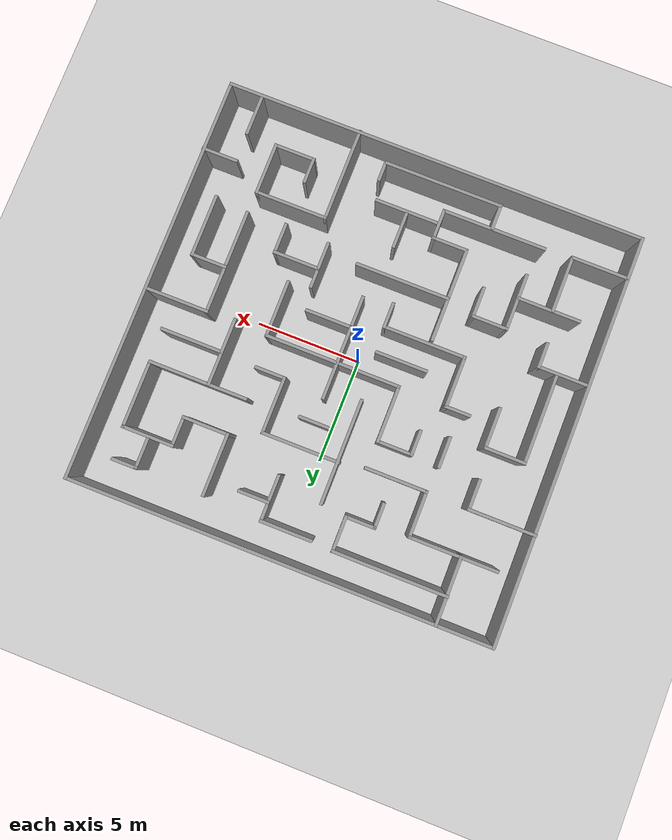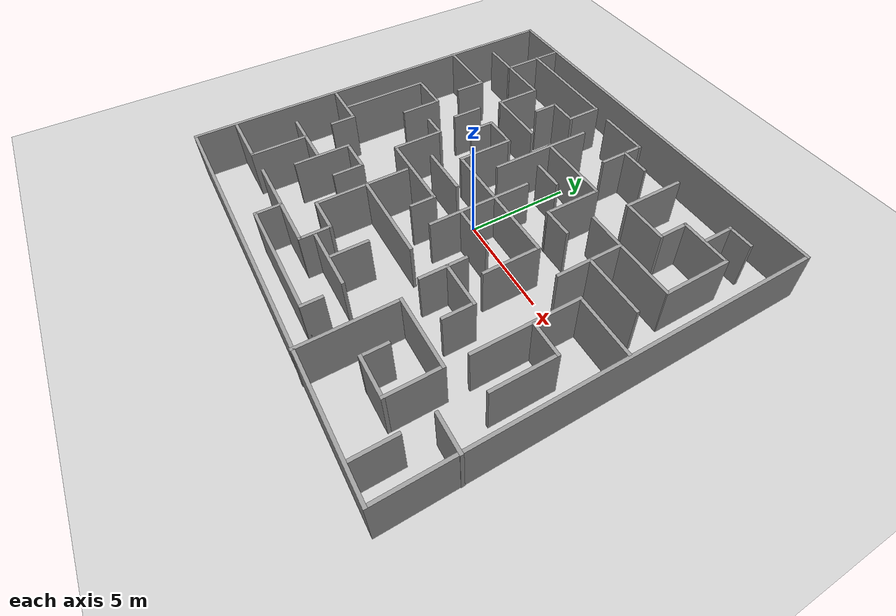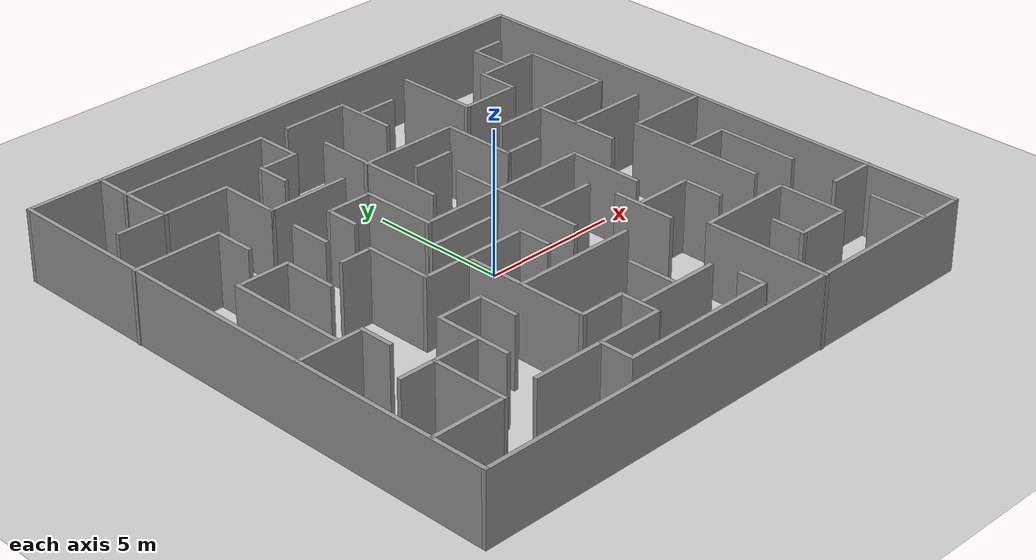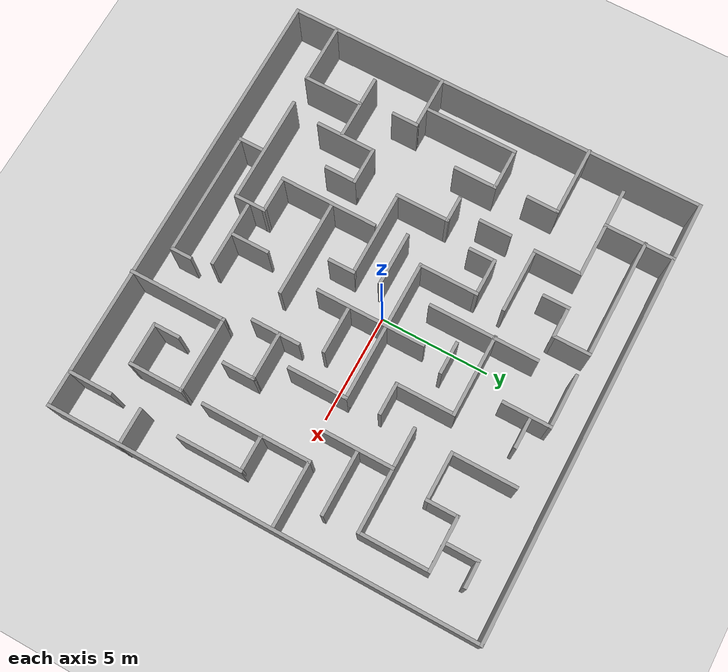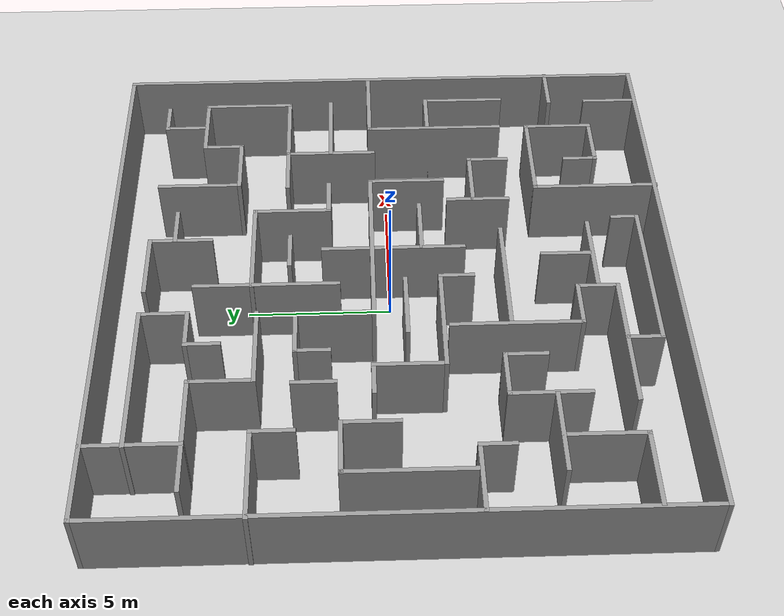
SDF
<?xml version="1.0"?>
<sdf version="1.7">
  <world name="maze_world">
    <model name="ground_plane">
      <static>true</static>
      <link name="link">
        <collision name="collision">
          <geometry>
            <plane>
              <normal>0 0 1</normal>
              <size>100 100</size>
            </plane>
          </geometry>
          <surface>
            <friction>
              <ode>
                <mu>100</mu>
                <mu2>50</mu2>
              </ode>
            </friction>
          </surface>
        </collision>
        <visual name="visual">
          <geometry>
            <plane>
              <normal>0 0 1</normal>
              <size>100 100</size>
            </plane>
          </geometry>
          <material>
            <script>
              <uri>file://media/materials/scripts/gazebo.material</uri>
              <name>Gazebo/Grey</name>
            </script>
          </material>
        </visual>
      </link>
    </model>

    <light name="sun" type="directional">
      <cast_shadows>true</cast_shadows>
      <pose>0 0 10 0 0 0</pose>
      <diffuse>0.8 0.8 0.8 1</diffuse>
      <specular>0.2 0.2 0.2 1</specular>
      <attenuation>
        <range>1000</range>
        <constant>0.9</constant>
        <linear>0.01</linear>
        <quadratic>0.001</quadratic>
      </attenuation>
      <direction>-0.5 0.1 -0.9</direction>
    </light>

    <include>
      <uri>model://maze</uri>
      <name>maze</name>
      <pose>0 0 0 0 0 0</pose>
    </include>

    <plugin name="gazebo_ros_state" filename="libgazebo_ros_state.so">
      <ros>
        <namespace>/gazebo</namespace>
      </ros>
      <update_rate>30.0</update_rate>
    </plugin>
  </world>
</sdf>

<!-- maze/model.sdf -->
<sdf version='1.7'>
  <model name='maze'>
    <pose>-0.256617 -0.139436 0 0 -0 0</pose>
    <link name='Wall_100'>
      <collision name='Wall_100_Collision'>
        <geometry>
          <box>
            <size>1.5 0.15 2.5</size>
          </box>
        </geometry>
        <pose>0 0 1.25 0 -0 0</pose>
      </collision>
      <visual name='Wall_100_Visual'>
        <pose>0 0 1.25 0 -0 0</pose>
        <geometry>
          <box>
            <size>1.5 0.15 2.5</size>
          </box>
        </geometry>
        <material>
          <script>
            <uri>file://media/materials/scripts/gazebo.material</uri>
            <name>Gazebo/Grey</name>
          </script>
          <ambient>1 1 1 1</ambient>
        </material>
        <meta>
          <layer>0</layer>
        </meta>
      </visual>
      <pose>3.38845 2.10955 0 0 -0 0</pose>
    </link>
    <link name='Wall_102'>
      <collision name='Wall_102_Collision'>
        <geometry>
          <box>
            <size>1.5 0.15 2.5</size>
          </box>
        </geometry>
        <pose>0 0 1.25 0 -0 0</pose>
      </collision>
      <visual name='Wall_102_Visual'>
        <pose>0 0 1.25 0 -0 0</pose>
        <geometry>
          <box>
            <size>1.5 0.15 2.5</size>
          </box>
        </geometry>
        <material>
          <script>
            <uri>file://media/materials/scripts/gazebo.material</uri>
            <name>Gazebo/Grey</name>
          </script>
          <ambient>1 1 1 1</ambient>
        </material>
        <meta>
          <layer>0</layer>
        </meta>
      </visual>
      <pose>0.759386 3.45543 0 0 -0 0</pose>
    </link>
    <link name='Wall_104'>
      <collision name='Wall_104_Collision'>
        <geometry>
          <box>
            <size>5.5 0.15 2.5</size>
          </box>
        </geometry>
        <pose>0 0 1.25 0 -0 0</pose>
      </collision>
      <visual name='Wall_104_Visual'>
        <pose>0 0 1.25 0 -0 0</pose>
        <geometry>
          <box>
            <size>5.5 0.15 2.5</size>
          </box>
        </geometry>
        <material>
          <script>
            <uri>file://media/materials/scripts/gazebo.material</uri>
            <name>Gazebo/Grey</name>
          </script>
          <ambient>1 1 1 1</ambient>
        </material>
        <meta>
          <layer>0</layer>
        </meta>
      </visual>
      <pose>-4.73773 8.38355 0 0 -0 0</pose>
    </link>
    <link name='Wall_105'>
      <collision name='Wall_105_Collision'>
        <geometry>
          <box>
            <size>1.75 0.15 2.5</size>
          </box>
        </geometry>
        <pose>0 0 1.25 0 -0 0</pose>
      </collision>
      <visual name='Wall_105_Visual'>
        <pose>0 0 1.25 0 -0 0</pose>
        <geometry>
          <box>
            <size>1.75 0.15 2.5</size>
          </box>
        </geometry>
        <material>
          <script>
            <uri>file://media/materials/scripts/gazebo.material</uri>
            <name>Gazebo/Grey</name>
          </script>
          <ambient>1 1 1 1</ambient>
        </material>
        <meta>
          <layer>0</layer>
        </meta>
      </visual>
      <pose>-2.06273 7.58355 0 0 -0 -1.5708</pose>
    </link>
    <link name='Wall_106'>
      <collision name='Wall_106_Collision'>
        <geometry>
          <box>
            <size>1.5 0.15 2.5</size>
          </box>
        </geometry>
        <pose>0 0 1.25 0 -0 0</pose>
      </collision>
      <visual name='Wall_106_Visual'>
        <pose>0 0 1.25 0 -0 0</pose>
        <geometry>
          <box>
            <size>1.5 0.15 2.5</size>
          </box>
        </geometry>
        <material>
          <script>
            <uri>file://media/materials/scripts/gazebo.material</uri>
            <name>Gazebo/Grey</name>
          </script>
          <ambient>1 1 1 1</ambient>
        </material>
        <meta>
          <layer>0</layer>
        </meta>
      </visual>
      <pose>-2.73773 6.78355 0 0 -0 3.14159</pose>
    </link>
    <link name='Wall_107'>
      <collision name='Wall_107_Collision'>
        <geometry>
          <box>
            <size>1.25 0.15 2.5</size>
          </box>
        </geometry>
        <pose>0 0 1.25 0 -0 0</pose>
      </collision>
      <visual name='Wall_107_Visual'>
        <pose>0 0 1.25 0 -0 0</pose>
        <geometry>
          <box>
            <size>1.25 0.15 2.5</size>
          </box>
        </geometry>
        <material>
          <script>
            <uri>file://media/materials/scripts/gazebo.material</uri>
            <name>Gazebo/Grey</name>
          </script>
          <ambient>1 1 1 1</ambient>
        </material>
        <meta>
          <layer>0</layer>
        </meta>
      </visual>
      <pose>-3.41273 6.23355 0 0 -0 -1.5708</pose>
    </link>
    <link name='Wall_11'>
      <collision name='Wall_11_Collision'>
        <geometry>
          <box>
            <size>2.75 0.15 2.5</size>
          </box>
        </geometry>
        <pose>0 0 1.25 0 -0 0</pose>
      </collision>
      <visual name='Wall_11_Visual'>
        <pose>0 0 1.25 0 -0 0</pose>
        <geometry>
          <box>
            <size>2.75 0.15 2.5</size>
          </box>
        </geometry>
        <material>
          <script>
            <uri>file://media/materials/scripts/gazebo.material</uri>
            <name>Gazebo/Grey</name>
          </script>
          <ambient>1 1 1 1</ambient>
        </material>
        <meta>
          <layer>0</layer>
        </meta>
      </visual>
      <pose>-8.6895 -7.69503 0 0 -0 0</pose>
    </link>
    <link name='Wall_110'>
      <collision name='Wall_110_Collision'>
        <geometry>
          <box>
            <size>4.75 0.15 2.5</size>
          </box>
        </geometry>
        <pose>0 0 1.25 0 -0 0</pose>
      </collision>
      <visual name='Wall_110_Visual'>
        <pose>0 0 1.25 0 -0 0</pose>
        <geometry>
          <box>
            <size>4.75 0.15 2.5</size>
          </box>
        </geometry>
        <material>
          <script>
            <uri>file://media/materials/scripts/gazebo.material</uri>
            <name>Gazebo/Grey</name>
          </script>
          <ambient>1 1 1 1</ambient>
        </material>
        <meta>
          <layer>0</layer>
        </meta>
      </visual>
      <pose>6.27353 3.59421 0 0 -0 9.9e-05</pose>
    </link>
    <link name='Wall_111'>
      <collision name='Wall_111_Collision'>
        <geometry>
          <box>
            <size>3.25 0.15 2.5</size>
          </box>
        </geometry>
        <pose>0 0 1.25 0 -0 0</pose>
      </collision>
      <visual name='Wall_111_Visual'>
        <pose>0 0 1.25 0 -0 0</pose>
        <geometry>
          <box>
            <size>3.25 0.15 2.5</size>
          </box>
        </geometry>
        <material>
          <script>
            <uri>file://media/materials/scripts/gazebo.material</uri>
            <name>Gazebo/Grey</name>
          </script>
          <ambient>1 1 1 1</ambient>
        </material>
        <meta>
          <layer>0</layer>
        </meta>
      </visual>
      <pose>8.57362 5.14444 0 0 -0 1.5708</pose>
    </link>
    <link name='Wall_112'>
      <collision name='Wall_112_Collision'>
        <geometry>
          <box>
            <size>2.5 0.15 2.5</size>
          </box>
        </geometry>
        <pose>0 0 1.25 0 -0 0</pose>
      </collision>
      <visual name='Wall_112_Visual'>
        <pose>0 0 1.25 0 -0 0</pose>
        <geometry>
          <box>
            <size>2.5 0.15 2.5</size>
          </box>
        </geometry>
        <material>
          <script>
            <uri>file://media/materials/scripts/gazebo.material</uri>
            <name>Gazebo/Grey</name>
          </script>
          <ambient>1 1 1 1</ambient>
        </material>
        <meta>
          <layer>0</layer>
        </meta>
      </visual>
      <pose>7.39853 6.69421 0 0 -0 -3.1414</pose>
    </link>
    <link name='Wall_113'>
      <collision name='Wall_113_Collision'>
        <geometry>
          <box>
            <size>1.5 0.15 2.5</size>
          </box>
        </geometry>
        <pose>0 0 1.25 0 -0 0</pose>
      </collision>
      <visual name='Wall_113_Visual'>
        <pose>0 0 1.25 0 -0 0</pose>
        <geometry>
          <box>
            <size>1.5 0.15 2.5</size>
          </box>
        </geometry>
        <material>
          <script>
            <uri>file://media/materials/scripts/gazebo.material</uri>
            <name>Gazebo/Grey</name>
          </script>
          <ambient>1 1 1 1</ambient>
        </material>
        <meta>
          <layer>0</layer>
        </meta>
      </visual>
      <pose>6.22344 6.01898 0 0 -0 -1.5708</pose>
    </link>
    <link name='Wall_114'>
      <collision name='Wall_114_Collision'>
        <geometry>
          <box>
            <size>2.25 0.15 2.5</size>
          </box>
        </geometry>
        <pose>0 0 1.25 0 -0 0</pose>
      </collision>
      <visual name='Wall_114_Visual'>
        <pose>0 0 1.25 0 -0 0</pose>
        <geometry>
          <box>
            <size>2.25 0.15 2.5</size>
          </box>
        </geometry>
        <material>
          <script>
            <uri>file://media/materials/scripts/gazebo.material</uri>
            <name>Gazebo/Grey</name>
          </script>
          <ambient>1 1 1 1</ambient>
        </material>
        <meta>
          <layer>0</layer>
        </meta>
      </visual>
      <pose>5.17345 5.34398 0 0 -0 3.14159</pose>
    </link>
    <link name='Wall_115'>
      <collision name='Wall_115_Collision'>
        <geometry>
          <box>
            <size>3 0.15 2.5</size>
          </box>
        </geometry>
        <pose>0 0 1.25 0 -0 0</pose>
      </collision>
      <visual name='Wall_115_Visual'>
        <pose>0 0 1.25 0 -0 0</pose>
        <geometry>
          <box>
            <size>3 0.15 2.5</size>
          </box>
        </geometry>
        <material>
          <script>
            <uri>file://media/materials/scripts/gazebo.material</uri>
            <name>Gazebo/Grey</name>
          </script>
          <ambient>1 1 1 1</ambient>
        </material>
        <meta>
          <layer>0</layer>
        </meta>
      </visual>
      <pose>4.12345 6.76898 0 0 -0 1.5708</pose>
    </link>
    <link name='Wall_117'>
      <collision name='Wall_117_Collision'>
        <geometry>
          <box>
            <size>2.75 0.15 2.5</size>
          </box>
        </geometry>
        <pose>0 0 1.25 0 -0 0</pose>
      </collision>
      <visual name='Wall_117_Visual'>
        <pose>0 0 1.25 0 -0 0</pose>
        <geometry>
          <box>
            <size>2.75 0.15 2.5</size>
          </box>
        </geometry>
        <material>
          <script>
            <uri>file://media/materials/scripts/gazebo.material</uri>
            <name>Gazebo/Grey</name>
          </script>
          <ambient>1 1 1 1</ambient>
        </material>
        <meta>
          <layer>0</layer>
        </meta>
      </visual>
      <pose>4.17212 -0.685147 0 0 -0 -1.5708</pose>
    </link>
    <link name='Wall_12'>
      <collision name='Wall_12_Collision'>
        <geometry>
          <box>
            <size>2.75 0.15 2.5</size>
          </box>
        </geometry>
        <pose>0 0 1.25 0 -0 0</pose>
      </collision>
      <visual name='Wall_12_Visual'>
        <pose>0 0 1.25 0 -0 0</pose>
        <geometry>
          <box>
            <size>2.75 0.15 2.5</size>
          </box>
        </geometry>
        <material>
          <script>
            <uri>file://media/materials/scripts/gazebo.material</uri>
            <name>Gazebo/Grey</name>
          </script>
          <ambient>1 1 1 1</ambient>
        </material>
        <meta>
          <layer>0</layer>
        </meta>
      </visual>
      <pose>-7.3895 -6.39503 0 0 -0 1.5708</pose>
    </link>
    <link name='Wall_120'>
      <collision name='Wall_120_Collision'>
        <geometry>
          <box>
            <size>3.25 0.15 2.5</size>
          </box>
        </geometry>
        <pose>0 0 1.25 0 -0 0</pose>
      </collision>
      <visual name='Wall_120_Visual'>
        <pose>0 0 1.25 0 -0 0</pose>
        <geometry>
          <box>
            <size>3.25 0.15 2.5</size>
          </box>
        </geometry>
        <material>
          <script>
            <uri>file://media/materials/scripts/gazebo.material</uri>
            <name>Gazebo/Grey</name>
          </script>
          <ambient>1 1 1 1</ambient>
        </material>
        <meta>
          <layer>0</layer>
        </meta>
      </visual>
      <pose>5.75719 2.03002 0 0 -0 -1.5708</pose>
    </link>
    <link name='Wall_122'>
      <collision name='Wall_122_Collision'>
        <geometry>
          <box>
            <size>3 0.15 2.5</size>
          </box>
        </geometry>
        <pose>0 0 1.25 0 -0 0</pose>
      </collision>
      <visual name='Wall_122_Visual'>
        <pose>0 0 1.25 0 -0 0</pose>
        <geometry>
          <box>
            <size>3 0.15 2.5</size>
          </box>
        </geometry>
        <material>
          <script>
            <uri>file://media/materials/scripts/gazebo.material</uri>
            <name>Gazebo/Grey</name>
          </script>
          <ambient>1 1 1 1</ambient>
        </material>
        <meta>
          <layer>0</layer>
        </meta>
      </visual>
      <pose>7.21252 2.03718 0 0 -0 0</pose>
    </link>
    <link name='Wall_124'>
      <collision name='Wall_124_Collision'>
        <geometry>
          <box>
            <size>2.25 0.15 2.5</size>
          </box>
        </geometry>
        <pose>0 0 1.25 0 -0 0</pose>
      </collision>
      <visual name='Wall_124_Visual'>
        <pose>0 0 1.25 0 -0 0</pose>
        <geometry>
          <box>
            <size>2.25 0.15 2.5</size>
          </box>
        </geometry>
        <material>
          <script>
            <uri>file://media/materials/scripts/gazebo.material</uri>
            <name>Gazebo/Grey</name>
          </script>
          <ambient>1 1 1 1</ambient>
        </material>
        <meta>
          <layer>0</layer>
        </meta>
      </visual>
      <pose>1.34239 7.26369 0 0 -0 1.5708</pose>
    </link>
    <link name='Wall_125'>
      <collision name='Wall_125_Collision'>
        <geometry>
          <box>
            <size>2.5 0.15 2.5</size>
          </box>
        </geometry>
        <pose>0 0 1.25 0 -0 0</pose>
      </collision>
      <visual name='Wall_125_Visual'>
        <pose>0 0 1.25 0 -0 0</pose>
        <geometry>
          <box>
            <size>2.5 0.15 2.5</size>
          </box>
        </geometry>
        <material>
          <script>
            <uri>file://media/materials/scripts/gazebo.material</uri>
            <name>Gazebo/Grey</name>
          </script>
          <ambient>1 1 1 1</ambient>
        </material>
        <meta>
          <layer>0</layer>
        </meta>
      </visual>
      <pose>0.167392 8.31369 0 0 -0 3.14159</pose>
    </link>
    <link name='Wall_127'>
      <collision name='Wall_127_Collision'>
        <geometry>
          <box>
            <size>1.5 0.15 2.5</size>
          </box>
        </geometry>
        <pose>0 0 1.25 0 -0 0</pose>
      </collision>
      <visual name='Wall_127_Visual'>
        <pose>0 0 1.25 0 -0 0</pose>
        <geometry>
          <box>
            <size>1.5 0.15 2.5</size>
          </box>
        </geometry>
        <material>
          <script>
            <uri>file://media/materials/scripts/gazebo.material</uri>
            <name>Gazebo/Grey</name>
          </script>
          <ambient>1 1 1 1</ambient>
        </material>
        <meta>
          <layer>0</layer>
        </meta>
      </visual>
      <pose>7.34124 7.49853 0 0 -0 1.5708</pose>
    </link>
    <link name='Wall_128'>
      <collision name='Wall_128_Collision'>
        <geometry>
          <box>
            <size>1.25 0.15 2.5</size>
          </box>
        </geometry>
        <pose>0 0 1.25 0 -0 0</pose>
      </collision>
      <visual name='Wall_128_Visual'>
        <pose>0 0 1.25 0 -0 0</pose>
        <geometry>
          <box>
            <size>1.25 0.15 2.5</size>
          </box>
        </geometry>
        <material>
          <script>
            <uri>file://media/materials/scripts/gazebo.material</uri>
            <name>Gazebo/Grey</name>
          </script>
          <ambient>1 1 1 1</ambient>
        </material>
        <meta>
          <layer>0</layer>
        </meta>
      </visual>
      <pose>7.89124 8.17353 0 0 -0 0</pose>
    </link>
    <link name='Wall_130'>
      <collision name='Wall_130_Collision'>
        <geometry>
          <box>
            <size>1.5 0.15 2.5</size>
          </box>
        </geometry>
        <pose>0 0 1.25 0 -0 0</pose>
      </collision>
      <visual name='Wall_130_Visual'>
        <pose>0 0 1.25 0 -0 0</pose>
        <geometry>
          <box>
            <size>1.5 0.15 2.5</size>
          </box>
        </geometry>
        <material>
          <script>
            <uri>file://media/materials/scripts/gazebo.material</uri>
            <name>Gazebo/Grey</name>
          </script>
          <ambient>1 1 1 1</ambient>
        </material>
        <meta>
          <layer>0</layer>
        </meta>
      </visual>
      <pose>2.03707 7.44726 0 0 -0 0</pose>
    </link>
    <link name='Wall_132'>
      <collision name='Wall_132_Collision'>
        <geometry>
          <box>
            <size>1.25 0.15 2.5</size>
          </box>
        </geometry>
        <pose>0 0 1.25 0 -0 0</pose>
      </collision>
      <visual name='Wall_132_Visual'>
        <pose>0 0 1.25 0 -0 0</pose>
        <geometry>
          <box>
            <size>1.25 0.15 2.5</size>
          </box>
        </geometry>
        <material>
          <script>
            <uri>file://media/materials/scripts/gazebo.material</uri>
            <name>Gazebo/Grey</name>
          </script>
          <ambient>1 1 1 1</ambient>
        </material>
        <meta>
          <layer>0</layer>
        </meta>
      </visual>
      <pose>-3.53549 -8.20861 0 0 -0 -1.5708</pose>
    </link>
    <link name='Wall_133'>
      <collision name='Wall_133_Collision'>
        <geometry>
          <box>
            <size>5.75 0.15 2.5</size>
          </box>
        </geometry>
        <pose>0 0 1.25 0 -0 0</pose>
      </collision>
      <visual name='Wall_133_Visual'>
        <pose>0 0 1.25 0 -0 0</pose>
        <geometry>
          <box>
            <size>5.75 0.15 2.5</size>
          </box>
        </geometry>
        <material>
          <script>
            <uri>file://media/materials/scripts/gazebo.material</uri>
            <name>Gazebo/Grey</name>
          </script>
          <ambient>1 1 1 1</ambient>
        </material>
        <meta>
          <layer>0</layer>
        </meta>
      </visual>
      <pose>-0.735489 -8.75861 0 0 -0 0</pose>
    </link>
    <link name='Wall_134'>
      <collision name='Wall_134_Collision'>
        <geometry>
          <box>
            <size>1 0.15 2.5</size>
          </box>
        </geometry>
        <pose>0 0 1.25 0 -0 0</pose>
      </collision>
      <visual name='Wall_134_Visual'>
        <pose>0 0 1.25 0 -0 0</pose>
        <geometry>
          <box>
            <size>1 0.15 2.5</size>
          </box>
        </geometry>
        <material>
          <script>
            <uri>file://media/materials/scripts/gazebo.material</uri>
            <name>Gazebo/Grey</name>
          </script>
          <ambient>1 1 1 1</ambient>
        </material>
        <meta>
          <layer>0</layer>
        </meta>
      </visual>
      <pose>2.06451 -8.33361 0 0 -0 1.5708</pose>
    </link>
    <link name='Wall_14'>
      <collision name='Wall_14_Collision'>
        <geometry>
          <box>
            <size>3 0.15 2.5</size>
          </box>
        </geometry>
        <pose>0 0 1.25 0 -0 0</pose>
      </collision>
      <visual name='Wall_14_Visual'>
        <pose>0 0 1.25 0 -0 0</pose>
        <geometry>
          <box>
            <size>3 0.15 2.5</size>
          </box>
        </geometry>
        <material>
          <script>
            <uri>file://media/materials/scripts/gazebo.material</uri>
            <name>Gazebo/Grey</name>
          </script>
          <ambient>1 1 1 1</ambient>
        </material>
        <meta>
          <layer>0</layer>
        </meta>
      </visual>
      <pose>-7.22947 -5.06542 0 0 -0 0</pose>
    </link>
    <link name='Wall_16'>
      <collision name='Wall_16_Collision'>
        <geometry>
          <box>
            <size>5 0.15 2.5</size>
          </box>
        </geometry>
        <pose>0 0 1.25 0 -0 0</pose>
      </collision>
      <visual name='Wall_16_Visual'>
        <pose>0 0 1.25 0 -0 0</pose>
        <geometry>
          <box>
            <size>5 0.15 2.5</size>
          </box>
        </geometry>
        <material>
          <script>
            <uri>file://media/materials/scripts/gazebo.material</uri>
            <name>Gazebo/Grey</name>
          </script>
          <ambient>1 1 1 1</ambient>
        </material>
        <meta>
          <layer>0</layer>
        </meta>
      </visual>
      <pose>-3.64031 -7.61412 0 0 -0 0</pose>
    </link>
    <link name='Wall_17'>
      <collision name='Wall_17_Collision'>
        <geometry>
          <box>
            <size>1.5 0.15 2.5</size>
          </box>
        </geometry>
        <pose>0 0 1.25 0 -0 0</pose>
      </collision>
      <visual name='Wall_17_Visual'>
        <pose>0 0 1.25 0 -0 0</pose>
        <geometry>
          <box>
            <size>1.5 0.15 2.5</size>
          </box>
        </geometry>
        <material>
          <script>
            <uri>file://media/materials/scripts/gazebo.material</uri>
            <name>Gazebo/Grey</name>
          </script>
          <ambient>1 1 1 1</ambient>
        </material>
        <meta>
          <layer>0</layer>
        </meta>
      </visual>
      <pose>-1.21531 -6.93912 0 0 -0 1.5708</pose>
    </link>
    <link name='Wall_18'>
      <collision name='Wall_18_Collision'>
        <geometry>
          <box>
            <size>1.75 0.15 2.5</size>
          </box>
        </geometry>
        <pose>0 0 1.25 0 -0 0</pose>
      </collision>
      <visual name='Wall_18_Visual'>
        <pose>0 0 1.25 0 -0 0</pose>
        <geometry>
          <box>
            <size>1.75 0.15 2.5</size>
          </box>
        </geometry>
        <material>
          <script>
            <uri>file://media/materials/scripts/gazebo.material</uri>
            <name>Gazebo/Grey</name>
          </script>
          <ambient>1 1 1 1</ambient>
        </material>
        <meta>
          <layer>0</layer>
        </meta>
      </visual>
      <pose>-2.01531 -6.26412 0 0 -0 3.14159</pose>
    </link>
    <link name='Wall_19'>
      <collision name='Wall_19_Collision'>
        <geometry>
          <box>
            <size>4.5 0.15 2.5</size>
          </box>
        </geometry>
        <pose>0 0 1.25 0 -0 0</pose>
      </collision>
      <visual name='Wall_19_Visual'>
        <pose>0 0 1.25 0 -0 0</pose>
        <geometry>
          <box>
            <size>4.5 0.15 2.5</size>
          </box>
        </geometry>
        <material>
          <script>
            <uri>file://media/materials/scripts/gazebo.material</uri>
            <name>Gazebo/Grey</name>
          </script>
          <ambient>1 1 1 1</ambient>
        </material>
        <meta>
          <layer>0</layer>
        </meta>
      </visual>
      <pose>-2.81531 -4.08912 0 0 -0 1.5708</pose>
    </link>
    <link name='Wall_21'>
      <collision name='Wall_21_Collision'>
        <geometry>
          <box>
            <size>2.75 0.15 2.5</size>
          </box>
        </geometry>
        <pose>0 0 1.25 0 -0 0</pose>
      </collision>
      <visual name='Wall_21_Visual'>
        <pose>0 0 1.25 0 -0 0</pose>
        <geometry>
          <box>
            <size>2.75 0.15 2.5</size>
          </box>
        </geometry>
        <material>
          <script>
            <uri>file://media/materials/scripts/gazebo.material</uri>
            <name>Gazebo/Grey</name>
          </script>
          <ambient>1 1 1 1</ambient>
        </material>
        <meta>
          <layer>0</layer>
        </meta>
      </visual>
      <pose>-5.74166 -4.85772 0 0 -0 1.5708</pose>
    </link>
    <link name='Wall_22'>
      <collision name='Wall_22_Collision'>
        <geometry>
          <box>
            <size>1.75 0.15 2.5</size>
          </box>
        </geometry>
        <pose>0 0 1.25 0 -0 0</pose>
      </collision>
      <visual name='Wall_22_Visual'>
        <pose>0 0 1.25 0 -0 0</pose>
        <geometry>
          <box>
            <size>1.75 0.15 2.5</size>
          </box>
        </geometry>
        <material>
          <script>
            <uri>file://media/materials/scripts/gazebo.material</uri>
            <name>Gazebo/Grey</name>
          </script>
          <ambient>1 1 1 1</ambient>
        </material>
        <meta>
          <layer>0</layer>
        </meta>
      </visual>
      <pose>-4.94166 -3.55772 0 0 -0 0</pose>
    </link>
    <link name='Wall_23'>
      <collision name='Wall_23_Collision'>
        <geometry>
          <box>
            <size>1.5 0.15 2.5</size>
          </box>
        </geometry>
        <pose>0 0 1.25 0 -0 0</pose>
      </collision>
      <visual name='Wall_23_Visual'>
        <pose>0 0 1.25 0 -0 0</pose>
        <geometry>
          <box>
            <size>1.5 0.15 2.5</size>
          </box>
        </geometry>
        <material>
          <script>
            <uri>file://media/materials/scripts/gazebo.material</uri>
            <name>Gazebo/Grey</name>
          </script>
          <ambient>1 1 1 1</ambient>
        </material>
        <meta>
          <layer>0</layer>
        </meta>
      </visual>
      <pose>-4.14166 -4.23272 0 0 -0 -1.5708</pose>
    </link>
    <link name='Wall_25'>
      <collision name='Wall_25_Collision'>
        <geometry>
          <box>
            <size>4.5 0.15 2.5</size>
          </box>
        </geometry>
        <pose>0 0 1.25 0 -0 0</pose>
      </collision>
      <visual name='Wall_25_Visual'>
        <pose>0 0 1.25 0 -0 0</pose>
        <geometry>
          <box>
            <size>4.5 0.15 2.5</size>
          </box>
        </geometry>
        <material>
          <script>
            <uri>file://media/materials/scripts/gazebo.material</uri>
            <name>Gazebo/Grey</name>
          </script>
          <ambient>1 1 1 1</ambient>
        </material>
        <meta>
          <layer>0</layer>
        </meta>
      </visual>
      <pose>-0.613407 -3.89221 0 0 -0 0</pose>
    </link>
    <link name='Wall_27'>
      <collision name='Wall_27_Collision'>
        <geometry>
          <box>
            <size>3 0.15 2.5</size>
          </box>
        </geometry>
        <pose>0 0 1.25 0 -0 0</pose>
      </collision>
      <visual name='Wall_27_Visual'>
        <pose>0 0 1.25 0 -0 0</pose>
        <geometry>
          <box>
            <size>3 0.15 2.5</size>
          </box>
        </geometry>
        <material>
          <script>
            <uri>file://media/materials/scripts/gazebo.material</uri>
            <name>Gazebo/Grey</name>
          </script>
          <ambient>1 1 1 1</ambient>
        </material>
        <meta>
          <layer>0</layer>
        </meta>
      </visual>
      <pose>0.376183 -6.96683 0 0 -0 0</pose>
    </link>
    <link name='Wall_33'>
      <collision name='Wall_33_Collision'>
        <geometry>
          <box>
            <size>4 0.15 2.5</size>
          </box>
        </geometry>
        <pose>0 0 1.25 0 -0 0</pose>
      </collision>
      <visual name='Wall_33_Visual'>
        <pose>0 0 1.25 0 -0 0</pose>
        <geometry>
          <box>
            <size>4 0.15 2.5</size>
          </box>
        </geometry>
        <material>
          <script>
            <uri>file://media/materials/scripts/gazebo.material</uri>
            <name>Gazebo/Grey</name>
          </script>
          <ambient>1 1 1 1</ambient>
        </material>
        <meta>
          <layer>0</layer>
        </meta>
      </visual>
      <pose>-2.52209 -1.66715 0 0 -0 0</pose>
    </link>
    <link name='Wall_34'>
      <collision name='Wall_34_Collision'>
        <geometry>
          <box>
            <size>1.25 0.15 2.5</size>
          </box>
        </geometry>
        <pose>0 0 1.25 0 -0 0</pose>
      </collision>
      <visual name='Wall_34_Visual'>
        <pose>0 0 1.25 0 -0 0</pose>
        <geometry>
          <box>
            <size>1.25 0.15 2.5</size>
          </box>
        </geometry>
        <material>
          <script>
            <uri>file://media/materials/scripts/gazebo.material</uri>
            <name>Gazebo/Grey</name>
          </script>
          <ambient>1 1 1 1</ambient>
        </material>
        <meta>
          <layer>0</layer>
        </meta>
      </visual>
      <pose>-0.597086 -2.21715 0 0 -0 -1.5708</pose>
    </link>
    <link name='Wall_36'>
      <collision name='Wall_36_Collision'>
        <geometry>
          <box>
            <size>1.75 0.15 2.5</size>
          </box>
        </geometry>
        <pose>0 0 1.25 0 -0 0</pose>
      </collision>
      <visual name='Wall_36_Visual'>
        <pose>0 0 1.25 0 -0 0</pose>
        <geometry>
          <box>
            <size>1.75 0.15 2.5</size>
          </box>
        </geometry>
        <material>
          <script>
            <uri>file://media/materials/scripts/gazebo.material</uri>
            <name>Gazebo/Grey</name>
          </script>
          <ambient>1 1 1 1</ambient>
        </material>
        <meta>
          <layer>0</layer>
        </meta>
      </visual>
      <pose>0.326672 -6.04546 0 0 -0 1.5708</pose>
    </link>
    <link name='Wall_39'>
      <collision name='Wall_39_Collision'>
        <geometry>
          <box>
            <size>4.5 0.15 2.5</size>
          </box>
        </geometry>
        <pose>0 0 1.25 0 -0 0</pose>
      </collision>
      <visual name='Wall_39_Visual'>
        <pose>0 0 1.25 0 -0 0</pose>
        <geometry>
          <box>
            <size>4.5 0.15 2.5</size>
          </box>
        </geometry>
        <material>
          <script>
            <uri>file://media/materials/scripts/gazebo.material</uri>
            <name>Gazebo/Grey</name>
          </script>
          <ambient>1 1 1 1</ambient>
        </material>
        <meta>
          <layer>0</layer>
        </meta>
      </visual>
      <pose>3.69697 -7.51752 0 0 -0 1.5708</pose>
    </link>
    <link name='Wall_4'>
      <collision name='Wall_4_Collision'>
        <geometry>
          <box>
            <size>19.5 0.15 2.5</size>
          </box>
        </geometry>
        <pose>0 0 1.25 0 -0 0</pose>
      </collision>
      <visual name='Wall_4_Visual'>
        <pose>0 0 1.25 0 -0 0</pose>
        <geometry>
          <box>
            <size>19.5 0.15 2.5</size>
          </box>
        </geometry>
        <material>
          <script>
            <uri>file://media/materials/scripts/gazebo.material</uri>
            <name>Gazebo/Grey</name>
          </script>
          <ambient>1 1 1 1</ambient>
        </material>
        <meta>
          <layer>0</layer>
        </meta>
      </visual>
      <pose>-10.0454 0.017523 0 0 -0 -1.5708</pose>
    </link>
    <link name='Wall_40'>
      <collision name='Wall_40_Collision'>
        <geometry>
          <box>
            <size>3.5 0.15 2.5</size>
          </box>
        </geometry>
        <pose>0 0 1.25 0 -0 0</pose>
      </collision>
      <visual name='Wall_40_Visual'>
        <pose>0 0 1.25 0 -0 0</pose>
        <geometry>
          <box>
            <size>3.5 0.15 2.5</size>
          </box>
        </geometry>
        <material>
          <script>
            <uri>file://media/materials/scripts/gazebo.material</uri>
            <name>Gazebo/Grey</name>
          </script>
          <ambient>1 1 1 1</ambient>
        </material>
        <meta>
          <layer>0</layer>
        </meta>
      </visual>
      <pose>5.37197 -5.34252 0 0 -0 0</pose>
    </link>
    <link name='Wall_42'>
      <collision name='Wall_42_Collision'>
        <geometry>
          <box>
            <size>5 0.15 2.5</size>
          </box>
        </geometry>
        <pose>0 0 1.25 0 -0 0</pose>
      </collision>
      <visual name='Wall_42_Visual'>
        <pose>0 0 1.25 0 -0 0</pose>
        <geometry>
          <box>
            <size>5 0.15 2.5</size>
          </box>
        </geometry>
        <material>
          <script>
            <uri>file://media/materials/scripts/gazebo.material</uri>
            <name>Gazebo/Grey</name>
          </script>
          <ambient>1 1 1 1</ambient>
        </material>
        <meta>
          <layer>0</layer>
        </meta>
      </visual>
      <pose>0.777135 -0.126235 0 0 -0 1.5708</pose>
    </link>
    <link name='Wall_44'>
      <collision name='Wall_44_Collision'>
        <geometry>
          <box>
            <size>6.5 0.15 2.5</size>
          </box>
        </geometry>
        <pose>0 0 1.25 0 -0 0</pose>
      </collision>
      <visual name='Wall_44_Visual'>
        <pose>0 0 1.25 0 -0 0</pose>
        <geometry>
          <box>
            <size>6.5 0.15 2.5</size>
          </box>
        </geometry>
        <material>
          <script>
            <uri>file://media/materials/scripts/gazebo.material</uri>
            <name>Gazebo/Grey</name>
          </script>
          <ambient>1 1 1 1</ambient>
        </material>
        <meta>
          <layer>0</layer>
        </meta>
      </visual>
      <pose>0.997119 0.614853 0 0 -0 0</pose>
    </link>
    <link name='Wall_46'>
      <collision name='Wall_46_Collision'>
        <geometry>
          <box>
            <size>2.5 0.15 2.5</size>
          </box>
        </geometry>
        <pose>0 0 1.25 0 -0 0</pose>
      </collision>
      <visual name='Wall_46_Visual'>
        <pose>0 0 1.25 0 -0 0</pose>
        <geometry>
          <box>
            <size>2.5 0.15 2.5</size>
          </box>
        </geometry>
        <material>
          <script>
            <uri>file://media/materials/scripts/gazebo.material</uri>
            <name>Gazebo/Grey</name>
          </script>
          <ambient>1 1 1 1</ambient>
        </material>
        <meta>
          <layer>0</layer>
        </meta>
      </visual>
      <pose>-1.88235 -0.475688 0 0 -0 0</pose>
    </link>
    <link name='Wall_48'>
      <collision name='Wall_48_Collision'>
        <geometry>
          <box>
            <size>2.5 0.15 2.5</size>
          </box>
        </geometry>
        <pose>0 0 1.25 0 -0 0</pose>
      </collision>
      <visual name='Wall_48_Visual'>
        <pose>0 0 1.25 0 -0 0</pose>
        <geometry>
          <box>
            <size>2.5 0.15 2.5</size>
          </box>
        </geometry>
        <material>
          <script>
            <uri>file://media/materials/scripts/gazebo.material</uri>
            <name>Gazebo/Grey</name>
          </script>
          <ambient>1 1 1 1</ambient>
        </material>
        <meta>
          <layer>0</layer>
        </meta>
      </visual>
      <pose>-8.84774 -2.48088 0 0 -0 0</pose>
    </link>
    <link name='Wall_49'>
      <collision name='Wall_49_Collision'>
        <geometry>
          <box>
            <size>1.25 0.15 2.5</size>
          </box>
        </geometry>
        <pose>0 0 1.25 0 -0 0</pose>
      </collision>
      <visual name='Wall_49_Visual'>
        <pose>0 0 1.25 0 -0 0</pose>
        <geometry>
          <box>
            <size>1.25 0.15 2.5</size>
          </box>
        </geometry>
        <material>
          <script>
            <uri>file://media/materials/scripts/gazebo.material</uri>
            <name>Gazebo/Grey</name>
          </script>
          <ambient>1 1 1 1</ambient>
        </material>
        <meta>
          <layer>0</layer>
        </meta>
      </visual>
      <pose>-7.67274 -3.03088 0 0 -0 -1.5708</pose>
    </link>
    <link name='Wall_5'>
      <collision name='Wall_5_Collision'>
        <geometry>
          <box>
            <size>20.25 0.15 2.5</size>
          </box>
        </geometry>
        <pose>0 0 1.25 0 -0 0</pose>
      </collision>
      <visual name='Wall_5_Visual'>
        <pose>0 0 1.25 0 -0 0</pose>
        <geometry>
          <box>
            <size>20.25 0.15 2.5</size>
          </box>
        </geometry>
        <material>
          <script>
            <uri>file://media/materials/scripts/gazebo.material</uri>
            <name>Gazebo/Grey</name>
          </script>
          <ambient>1 1 1 1</ambient>
        </material>
        <meta>
          <layer>0</layer>
        </meta>
      </visual>
      <pose>0.004561 -9.65748 0 0 -0 0</pose>
    </link>
    <link name='Wall_51'>
      <collision name='Wall_51_Collision'>
        <geometry>
          <box>
            <size>4.25 0.15 2.5</size>
          </box>
        </geometry>
        <pose>0 0 1.25 0 -0 0</pose>
      </collision>
      <visual name='Wall_51_Visual'>
        <pose>0 0 1.25 0 -0 0</pose>
        <geometry>
          <box>
            <size>4.25 0.15 2.5</size>
          </box>
        </geometry>
        <material>
          <script>
            <uri>file://media/materials/scripts/gazebo.material</uri>
            <name>Gazebo/Grey</name>
          </script>
          <ambient>1 1 1 1</ambient>
        </material>
        <meta>
          <layer>0</layer>
        </meta>
      </visual>
      <pose>-8.55735 -0.292873 0 0 -0 1.5708</pose>
    </link>
    <link name='Wall_52'>
      <collision name='Wall_52_Collision'>
        <geometry>
          <box>
            <size>2 0.15 2.5</size>
          </box>
        </geometry>
        <pose>0 0 1.25 0 -0 0</pose>
      </collision>
      <visual name='Wall_52_Visual'>
        <pose>0 0 1.25 0 -0 0</pose>
        <geometry>
          <box>
            <size>2 0.15 2.5</size>
          </box>
        </geometry>
        <material>
          <script>
            <uri>file://media/materials/scripts/gazebo.material</uri>
            <name>Gazebo/Grey</name>
          </script>
          <ambient>1 1 1 1</ambient>
        </material>
        <meta>
          <layer>0</layer>
        </meta>
      </visual>
      <pose>-7.63235 1.75713 0 0 -0 0</pose>
    </link>
    <link name='Wall_53'>
      <collision name='Wall_53_Collision'>
        <geometry>
          <box>
            <size>2 0.15 2.5</size>
          </box>
        </geometry>
        <pose>0 0 1.25 0 -0 0</pose>
      </collision>
      <visual name='Wall_53_Visual'>
        <pose>0 0 1.25 0 -0 0</pose>
        <geometry>
          <box>
            <size>2 0.15 2.5</size>
          </box>
        </geometry>
        <material>
          <script>
            <uri>file://media/materials/scripts/gazebo.material</uri>
            <name>Gazebo/Grey</name>
          </script>
          <ambient>1 1 1 1</ambient>
        </material>
        <meta>
          <layer>0</layer>
        </meta>
      </visual>
      <pose>-6.70735 0.832127 0 0 -0 -1.5708</pose>
    </link>
    <link name='Wall_55'>
      <collision name='Wall_55_Collision'>
        <geometry>
          <box>
            <size>2.5 0.15 2.5</size>
          </box>
        </geometry>
        <pose>0 0 1.25 0 -0 0</pose>
      </collision>
      <visual name='Wall_55_Visual'>
        <pose>0 0 1.25 0 -0 0</pose>
        <geometry>
          <box>
            <size>2.5 0.15 2.5</size>
          </box>
        </geometry>
        <material>
          <script>
            <uri>file://media/materials/scripts/gazebo.material</uri>
            <name>Gazebo/Grey</name>
          </script>
          <ambient>1 1 1 1</ambient>
        </material>
        <meta>
          <layer>0</layer>
        </meta>
      </visual>
      <pose>-4.44709 -0.492148 0 0 -0 1.5708</pose>
    </link>
    <link name='Wall_56'>
      <collision name='Wall_56_Collision'>
        <geometry>
          <box>
            <size>1.25 0.15 2.5</size>
          </box>
        </geometry>
        <pose>0 0 1.25 0 -0 0</pose>
      </collision>
      <visual name='Wall_56_Visual'>
        <pose>0 0 1.25 0 -0 0</pose>
        <geometry>
          <box>
            <size>1.25 0.15 2.5</size>
          </box>
        </geometry>
        <material>
          <script>
            <uri>file://media/materials/scripts/gazebo.material</uri>
            <name>Gazebo/Grey</name>
          </script>
          <ambient>1 1 1 1</ambient>
        </material>
        <meta>
          <layer>0</layer>
        </meta>
      </visual>
      <pose>-4.99709 0.682852 0 0 -0 3.14159</pose>
    </link>
    <link name='Wall_58'>
      <collision name='Wall_58_Collision'>
        <geometry>
          <box>
            <size>2.5 0.15 2.5</size>
          </box>
        </geometry>
        <pose>0 0 1.25 0 -0 0</pose>
      </collision>
      <visual name='Wall_58_Visual'>
        <pose>0 0 1.25 0 -0 0</pose>
        <geometry>
          <box>
            <size>2.5 0.15 2.5</size>
          </box>
        </geometry>
        <material>
          <script>
            <uri>file://media/materials/scripts/gazebo.material</uri>
            <name>Gazebo/Grey</name>
          </script>
          <ambient>1 1 1 1</ambient>
        </material>
        <meta>
          <layer>0</layer>
        </meta>
      </visual>
      <pose>7.04697 -6.51752 0 0 -0 -1.5708</pose>
    </link>
    <link name='Wall_59'>
      <collision name='Wall_59_Collision'>
        <geometry>
          <box>
            <size>2 0.15 2.5</size>
          </box>
        </geometry>
        <pose>0 0 1.25 0 -0 0</pose>
      </collision>
      <visual name='Wall_59_Visual'>
        <pose>0 0 1.25 0 -0 0</pose>
        <geometry>
          <box>
            <size>2 0.15 2.5</size>
          </box>
        </geometry>
        <material>
          <script>
            <uri>file://media/materials/scripts/gazebo.material</uri>
            <name>Gazebo/Grey</name>
          </script>
          <ambient>1 1 1 1</ambient>
        </material>
        <meta>
          <layer>0</layer>
        </meta>
      </visual>
      <pose>6.12197 -7.69252 0 0 -0 3.14159</pose>
    </link>
    <link name='Wall_6'>
      <collision name='Wall_6_Collision'>
        <geometry>
          <box>
            <size>19.5 0.15 2.5</size>
          </box>
        </geometry>
        <pose>0 0 1.25 0 -0 0</pose>
      </collision>
      <visual name='Wall_6_Visual'>
        <pose>0 0 1.25 0 -0 0</pose>
        <geometry>
          <box>
            <size>19.5 0.15 2.5</size>
          </box>
        </geometry>
        <material>
          <script>
            <uri>file://media/materials/scripts/gazebo.material</uri>
            <name>Gazebo/Grey</name>
          </script>
          <ambient>1 1 1 1</ambient>
        </material>
        <meta>
          <layer>0</layer>
        </meta>
      </visual>
      <pose>10.0546 0.017523 0 0 -0 1.5708</pose>
    </link>
    <link name='Wall_60'>
      <collision name='Wall_60_Collision'>
        <geometry>
          <box>
            <size>1.25 0.15 2.5</size>
          </box>
        </geometry>
        <pose>0 0 1.25 0 -0 0</pose>
      </collision>
      <visual name='Wall_60_Visual'>
        <pose>0 0 1.25 0 -0 0</pose>
        <geometry>
          <box>
            <size>1.25 0.15 2.5</size>
          </box>
        </geometry>
        <material>
          <script>
            <uri>file://media/materials/scripts/gazebo.material</uri>
            <name>Gazebo/Grey</name>
          </script>
          <ambient>1 1 1 1</ambient>
        </material>
        <meta>
          <layer>0</layer>
        </meta>
      </visual>
      <pose>5.19697 -7.14252 0 0 -0 1.5708</pose>
    </link>
    <link name='Wall_62'>
      <collision name='Wall_62_Collision'>
        <geometry>
          <box>
            <size>2.25 0.15 2.5</size>
          </box>
        </geometry>
        <pose>0 0 1.25 0 -0 0</pose>
      </collision>
      <visual name='Wall_62_Visual'>
        <pose>0 0 1.25 0 -0 0</pose>
        <geometry>
          <box>
            <size>2.25 0.15 2.5</size>
          </box>
        </geometry>
        <material>
          <script>
            <uri>file://media/materials/scripts/gazebo.material</uri>
            <name>Gazebo/Grey</name>
          </script>
          <ambient>1 1 1 1</ambient>
        </material>
        <meta>
          <layer>0</layer>
        </meta>
      </visual>
      <pose>1.85208 -1.10206 0 0 -0 0</pose>
    </link>
    <link name='Wall_64'>
      <collision name='Wall_64_Collision'>
        <geometry>
          <box>
            <size>2.25 0.15 2.5</size>
          </box>
        </geometry>
        <pose>0 0 1.25 0 -0 0</pose>
      </collision>
      <visual name='Wall_64_Visual'>
        <pose>0 0 1.25 0 -0 0</pose>
        <geometry>
          <box>
            <size>2.25 0.15 2.5</size>
          </box>
        </geometry>
        <material>
          <script>
            <uri>file://media/materials/scripts/gazebo.material</uri>
            <name>Gazebo/Grey</name>
          </script>
          <ambient>1 1 1 1</ambient>
        </material>
        <meta>
          <layer>0</layer>
        </meta>
      </visual>
      <pose>3.13639 -3.22436 0 0 -0 -1.5708</pose>
    </link>
    <link name='Wall_66'>
      <collision name='Wall_66_Collision'>
        <geometry>
          <box>
            <size>2 0.15 2.5</size>
          </box>
        </geometry>
        <pose>0 0 1.25 0 -0 0</pose>
      </collision>
      <visual name='Wall_66_Visual'>
        <pose>0 0 1.25 0 -0 0</pose>
        <geometry>
          <box>
            <size>2 0.15 2.5</size>
          </box>
        </geometry>
        <material>
          <script>
            <uri>file://media/materials/scripts/gazebo.material</uri>
            <name>Gazebo/Grey</name>
          </script>
          <ambient>1 1 1 1</ambient>
        </material>
        <meta>
          <layer>0</layer>
        </meta>
      </visual>
      <pose>8.49367 -8.68592 0 0 -0 1.5708</pose>
    </link>
    <link name='Wall_68'>
      <collision name='Wall_68_Collision'>
        <geometry>
          <box>
            <size>1.75 0.15 2.5</size>
          </box>
        </geometry>
        <pose>0 0 1.25 0 -0 0</pose>
      </collision>
      <visual name='Wall_68_Visual'>
        <pose>0 0 1.25 0 -0 0</pose>
        <geometry>
          <box>
            <size>1.75 0.15 2.5</size>
          </box>
        </geometry>
        <material>
          <script>
            <uri>file://media/materials/scripts/gazebo.material</uri>
            <name>Gazebo/Grey</name>
          </script>
          <ambient>1 1 1 1</ambient>
        </material>
        <meta>
          <layer>0</layer>
        </meta>
      </visual>
      <pose>9.27549 -6.35425 0 0 -0 3.14159</pose>
    </link>
    <link name='Wall_70'>
      <collision name='Wall_70_Collision'>
        <geometry>
          <box>
            <size>2.25 0.15 2.5</size>
          </box>
        </geometry>
        <pose>0 0 1.25 0 -0 0</pose>
      </collision>
      <visual name='Wall_70_Visual'>
        <pose>0 0 1.25 0 -0 0</pose>
        <geometry>
          <box>
            <size>2.25 0.15 2.5</size>
          </box>
        </geometry>
        <material>
          <script>
            <uri>file://media/materials/scripts/gazebo.material</uri>
            <name>Gazebo/Grey</name>
          </script>
          <ambient>1 1 1 1</ambient>
        </material>
        <meta>
          <layer>0</layer>
        </meta>
      </visual>
      <pose>4.19342 -3.05105 0 0 -0 0</pose>
    </link>
    <link name='Wall_71'>
      <collision name='Wall_71_Collision'>
        <geometry>
          <box>
            <size>1.5 0.15 2.5</size>
          </box>
        </geometry>
        <pose>0 0 1.25 0 -0 0</pose>
      </collision>
      <visual name='Wall_71_Visual'>
        <pose>0 0 1.25 0 -0 0</pose>
        <geometry>
          <box>
            <size>1.5 0.15 2.5</size>
          </box>
        </geometry>
        <material>
          <script>
            <uri>file://media/materials/scripts/gazebo.material</uri>
            <name>Gazebo/Grey</name>
          </script>
          <ambient>1 1 1 1</ambient>
        </material>
        <meta>
          <layer>0</layer>
        </meta>
      </visual>
      <pose>5.24342 -3.72605 0 0 -0 -1.5708</pose>
    </link>
    <link name='Wall_73'>
      <collision name='Wall_73_Collision'>
        <geometry>
          <box>
            <size>3.25 0.15 2.5</size>
          </box>
        </geometry>
        <pose>0 0 1.25 0 -0 0</pose>
      </collision>
      <visual name='Wall_73_Visual'>
        <pose>0 0 1.25 0 -0 0</pose>
        <geometry>
          <box>
            <size>3.25 0.15 2.5</size>
          </box>
        </geometry>
        <material>
          <script>
            <uri>file://media/materials/scripts/gazebo.material</uri>
            <name>Gazebo/Grey</name>
          </script>
          <ambient>1 1 1 1</ambient>
        </material>
        <meta>
          <layer>0</layer>
        </meta>
      </visual>
      <pose>-8.52549 4.54117 0 0 -0 0</pose>
    </link>
    <link name='Wall_74'>
      <collision name='Wall_74_Collision'>
        <geometry>
          <box>
            <size>1.5 0.15 2.5</size>
          </box>
        </geometry>
        <pose>0 0 1.25 0 -0 0</pose>
      </collision>
      <visual name='Wall_74_Visual'>
        <pose>0 0 1.25 0 -0 0</pose>
        <geometry>
          <box>
            <size>1.5 0.15 2.5</size>
          </box>
        </geometry>
        <material>
          <script>
            <uri>file://media/materials/scripts/gazebo.material</uri>
            <name>Gazebo/Grey</name>
          </script>
          <ambient>1 1 1 1</ambient>
        </material>
        <meta>
          <layer>0</layer>
        </meta>
      </visual>
      <pose>-6.97549 3.86617 0 0 -0 -1.5708</pose>
    </link>
    <link name='Wall_76'>
      <collision name='Wall_76_Collision'>
        <geometry>
          <box>
            <size>3.25 0.15 2.5</size>
          </box>
        </geometry>
        <pose>0 0 1.25 0 -0 0</pose>
      </collision>
      <visual name='Wall_76_Visual'>
        <pose>0 0 1.25 0 -0 0</pose>
        <geometry>
          <box>
            <size>3.25 0.15 2.5</size>
          </box>
        </geometry>
        <material>
          <script>
            <uri>file://media/materials/scripts/gazebo.material</uri>
            <name>Gazebo/Grey</name>
          </script>
          <ambient>1 1 1 1</ambient>
        </material>
        <meta>
          <layer>0</layer>
        </meta>
      </visual>
      <pose>-7.38044 8.14195 0 0 -0 -1.5708</pose>
    </link>
    <link name='Wall_79'>
      <collision name='Wall_79_Collision'>
        <geometry>
          <box>
            <size>4.25 0.15 2.5</size>
          </box>
        </geometry>
        <pose>0 0 1.25 0 -0 0</pose>
      </collision>
      <visual name='Wall_79_Visual'>
        <pose>0 0 1.25 0 -0 0</pose>
        <geometry>
          <box>
            <size>4.25 0.15 2.5</size>
          </box>
        </geometry>
        <material>
          <script>
            <uri>file://media/materials/scripts/gazebo.material</uri>
            <name>Gazebo/Grey</name>
          </script>
          <ambient>1 1 1 1</ambient>
        </material>
        <meta>
          <layer>0</layer>
        </meta>
      </visual>
      <pose>-7.01902 6.59622 0 0 -0 0</pose>
    </link>
    <link name='Wall_8'>
      <collision name='Wall_8_Collision'>
        <geometry>
          <box>
            <size>20.25 0.15 2.5</size>
          </box>
        </geometry>
        <pose>0 0 1.25 0 -0 0</pose>
      </collision>
      <visual name='Wall_8_Visual'>
        <pose>0 0 1.25 0 -0 0</pose>
        <geometry>
          <box>
            <size>20.25 0.15 2.5</size>
          </box>
        </geometry>
        <material>
          <script>
            <uri>file://media/materials/scripts/gazebo.material</uri>
            <name>Gazebo/Grey</name>
          </script>
          <ambient>1 1 1 1</ambient>
        </material>
        <meta>
          <layer>0</layer>
        </meta>
      </visual>
      <pose>0.004561 9.69252 0 0 -0 3.14159</pose>
    </link>
    <link name='Wall_80'>
      <collision name='Wall_80_Collision'>
        <geometry>
          <box>
            <size>2.25 0.15 2.5</size>
          </box>
        </geometry>
        <pose>0 0 1.25 0 -0 0</pose>
      </collision>
      <visual name='Wall_80_Visual'>
        <pose>0 0 1.25 0 -0 0</pose>
        <geometry>
          <box>
            <size>2.25 0.15 2.5</size>
          </box>
        </geometry>
        <material>
          <script>
            <uri>file://media/materials/scripts/gazebo.material</uri>
            <name>Gazebo/Grey</name>
          </script>
          <ambient>1 1 1 1</ambient>
        </material>
        <meta>
          <layer>0</layer>
        </meta>
      </visual>
      <pose>-4.96902 5.54622 0 0 -0 -1.5708</pose>
    </link>
    <link name='Wall_81'>
      <collision name='Wall_81_Collision'>
        <geometry>
          <box>
            <size>3 0.15 2.5</size>
          </box>
        </geometry>
        <pose>0 0 1.25 0 -0 0</pose>
      </collision>
      <visual name='Wall_81_Visual'>
        <pose>0 0 1.25 0 -0 0</pose>
        <geometry>
          <box>
            <size>3 0.15 2.5</size>
          </box>
        </geometry>
        <material>
          <script>
            <uri>file://media/materials/scripts/gazebo.material</uri>
            <name>Gazebo/Grey</name>
          </script>
          <ambient>1 1 1 1</ambient>
        </material>
        <meta>
          <layer>0</layer>
        </meta>
      </visual>
      <pose>-3.54402 4.49622 0 0 -0 0</pose>
    </link>
    <link name='Wall_83'>
      <collision name='Wall_83_Collision'>
        <geometry>
          <box>
            <size>1.5 0.15 2.5</size>
          </box>
        </geometry>
        <pose>0 0 1.25 0 -0 0</pose>
      </collision>
      <visual name='Wall_83_Visual'>
        <pose>0 0 1.25 0 -0 0</pose>
        <geometry>
          <box>
            <size>1.5 0.15 2.5</size>
          </box>
        </geometry>
        <material>
          <script>
            <uri>file://media/materials/scripts/gazebo.material</uri>
            <name>Gazebo/Grey</name>
          </script>
          <ambient>1 1 1 1</ambient>
        </material>
        <meta>
          <layer>0</layer>
        </meta>
      </visual>
      <pose>-5.09624 2.5967 0 0 -0 -1.5708</pose>
    </link>
    <link name='Wall_85'>
      <collision name='Wall_85_Collision'>
        <geometry>
          <box>
            <size>2.75 0.15 2.5</size>
          </box>
        </geometry>
        <pose>0 0 1.25 0 -0 0</pose>
      </collision>
      <visual name='Wall_85_Visual'>
        <pose>0 0 1.25 0 -0 0</pose>
        <geometry>
          <box>
            <size>2.75 0.15 2.5</size>
          </box>
        </geometry>
        <material>
          <script>
            <uri>file://media/materials/scripts/gazebo.material</uri>
            <name>Gazebo/Grey</name>
          </script>
          <ambient>1 1 1 1</ambient>
        </material>
        <meta>
          <layer>0</layer>
        </meta>
      </visual>
      <pose>-2.17788 1.91485 0 0 -0 1.5708</pose>
    </link>
    <link name='Wall_86'>
      <collision name='Wall_86_Collision'>
        <geometry>
          <box>
            <size>1.75 0.15 2.5</size>
          </box>
        </geometry>
        <pose>0 0 1.25 0 -0 0</pose>
      </collision>
      <visual name='Wall_86_Visual'>
        <pose>0 0 1.25 0 -0 0</pose>
        <geometry>
          <box>
            <size>1.75 0.15 2.5</size>
          </box>
        </geometry>
        <material>
          <script>
            <uri>file://media/materials/scripts/gazebo.material</uri>
            <name>Gazebo/Grey</name>
          </script>
          <ambient>1 1 1 1</ambient>
        </material>
        <meta>
          <layer>0</layer>
        </meta>
      </visual>
      <pose>-2.97788 3.21485 0 0 -0 3.14159</pose>
    </link>
    <link name='Wall_87'>
      <collision name='Wall_87_Collision'>
        <geometry>
          <box>
            <size>1.25 0.15 2.5</size>
          </box>
        </geometry>
        <pose>0 0 1.25 0 -0 0</pose>
      </collision>
      <visual name='Wall_87_Visual'>
        <pose>0 0 1.25 0 -0 0</pose>
        <geometry>
          <box>
            <size>1.25 0.15 2.5</size>
          </box>
        </geometry>
        <material>
          <script>
            <uri>file://media/materials/scripts/gazebo.material</uri>
            <name>Gazebo/Grey</name>
          </script>
          <ambient>1 1 1 1</ambient>
        </material>
        <meta>
          <layer>0</layer>
        </meta>
      </visual>
      <pose>-3.77788 2.66485 0 0 -0 -1.5708</pose>
    </link>
    <link name='Wall_89'>
      <collision name='Wall_89_Collision'>
        <geometry>
          <box>
            <size>5 0.15 2.5</size>
          </box>
        </geometry>
        <pose>0 0 1.25 0 -0 0</pose>
      </collision>
      <visual name='Wall_89_Visual'>
        <pose>0 0 1.25 0 -0 0</pose>
        <geometry>
          <box>
            <size>5 0.15 2.5</size>
          </box>
        </geometry>
        <material>
          <script>
            <uri>file://media/materials/scripts/gazebo.material</uri>
            <name>Gazebo/Grey</name>
          </script>
          <ambient>1 1 1 1</ambient>
        </material>
        <meta>
          <layer>0</layer>
        </meta>
      </visual>
      <pose>-0.846093 4.22175 0 0 -0 1.5708</pose>
    </link>
    <link name='Wall_91'>
      <collision name='Wall_91_Collision'>
        <geometry>
          <box>
            <size>5 0.15 2.5</size>
          </box>
        </geometry>
        <pose>0 0 1.25 0 -0 0</pose>
      </collision>
      <visual name='Wall_91_Visual'>
        <pose>0 0 1.25 0 -0 0</pose>
        <geometry>
          <box>
            <size>5 0.15 2.5</size>
          </box>
        </geometry>
        <material>
          <script>
            <uri>file://media/materials/scripts/gazebo.material</uri>
            <name>Gazebo/Grey</name>
          </script>
          <ambient>1 1 1 1</ambient>
        </material>
        <meta>
          <layer>0</layer>
        </meta>
      </visual>
      <pose>7.0832 -1.84658 0 0 -0 1.5708</pose>
    </link>
    <link name='Wall_93'>
      <collision name='Wall_93_Collision'>
        <geometry>
          <box>
            <size>3 0.15 2.5</size>
          </box>
        </geometry>
        <pose>0 0 1.25 0 -0 0</pose>
      </collision>
      <visual name='Wall_93_Visual'>
        <pose>0 0 1.25 0 -0 0</pose>
        <geometry>
          <box>
            <size>3 0.15 2.5</size>
          </box>
        </geometry>
        <material>
          <script>
            <uri>file://media/materials/scripts/gazebo.material</uri>
            <name>Gazebo/Grey</name>
          </script>
          <ambient>1 1 1 1</ambient>
        </material>
        <meta>
          <layer>0</layer>
        </meta>
      </visual>
      <pose>8.5082 0.578416 0 0 -0 0</pose>
    </link>
    <link name='Wall_95'>
      <collision name='Wall_95_Collision'>
        <geometry>
          <box>
            <size>1.75 0.15 2.5</size>
          </box>
        </geometry>
        <pose>0 0 1.25 0 -0 0</pose>
      </collision>
      <visual name='Wall_95_Visual'>
        <pose>0 0 1.25 0 -0 0</pose>
        <geometry>
          <box>
            <size>1.75 0.15 2.5</size>
          </box>
        </geometry>
        <material>
          <script>
            <uri>file://media/materials/scripts/gazebo.material</uri>
            <name>Gazebo/Grey</name>
          </script>
          <ambient>1 1 1 1</ambient>
        </material>
        <meta>
          <layer>0</layer>
        </meta>
      </visual>
      <pose>7.8832 -1.60152 0 0 -0 0</pose>
    </link>
    <link name='Wall_96'>
      <collision name='Wall_96_Collision'>
        <geometry>
          <box>
            <size>3 0.15 2.5</size>
          </box>
        </geometry>
        <pose>0 0 1.25 0 -0 0</pose>
      </collision>
      <visual name='Wall_96_Visual'>
        <pose>0 0 1.25 0 -0 0</pose>
        <geometry>
          <box>
            <size>3 0.15 2.5</size>
          </box>
        </geometry>
        <material>
          <script>
            <uri>file://media/materials/scripts/gazebo.material</uri>
            <name>Gazebo/Grey</name>
          </script>
          <ambient>1 1 1 1</ambient>
        </material>
        <meta>
          <layer>0</layer>
        </meta>
      </visual>
      <pose>8.6832 -3.02652 0 0 -0 -1.5708</pose>
    </link>
    <link name='Wall_98'>
      <collision name='Wall_98_Collision'>
        <geometry>
          <box>
            <size>3.75 0.15 2.5</size>
          </box>
        </geometry>
        <pose>0 0 1.25 0 -0 0</pose>
      </collision>
      <visual name='Wall_98_Visual'>
        <pose>0 0 1.25 0 -0 0</pose>
        <geometry>
          <box>
            <size>3.75 0.15 2.5</size>
          </box>
        </geometry>
        <material>
          <script>
            <uri>file://media/materials/scripts/gazebo.material</uri>
            <name>Gazebo/Grey</name>
          </script>
          <ambient>1 1 1 1</ambient>
        </material>
        <meta>
          <layer>0</layer>
        </meta>
      </visual>
      <pose>0.913452 4.70955 0 0 -0 0</pose>
    </link>
    <link name='Wall_99'>
      <collision name='Wall_99_Collision'>
        <geometry>
          <box>
            <size>2.75 0.15 2.5</size>
          </box>
        </geometry>
        <pose>0 0 1.25 0 -0 0</pose>
      </collision>
      <visual name='Wall_99_Visual'>
        <pose>0 0 1.25 0 -0 0</pose>
        <geometry>
          <box>
            <size>2.75 0.15 2.5</size>
          </box>
        </geometry>
        <material>
          <script>
            <uri>file://media/materials/scripts/gazebo.material</uri>
            <name>Gazebo/Grey</name>
          </script>
          <ambient>1 1 1 1</ambient>
        </material>
        <meta>
          <layer>0</layer>
        </meta>
      </visual>
      <pose>2.71345 3.40955 0 0 -0 -1.5708</pose>
    </link>
    <static>1</static>
  </model>
</sdf>
